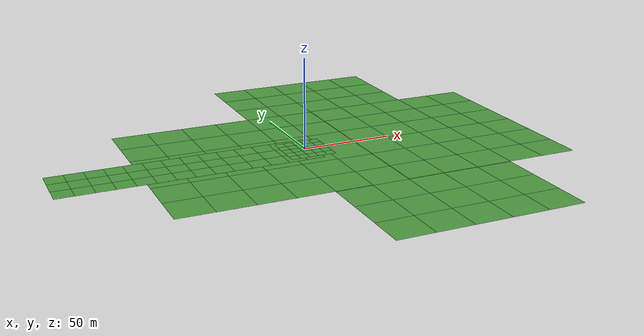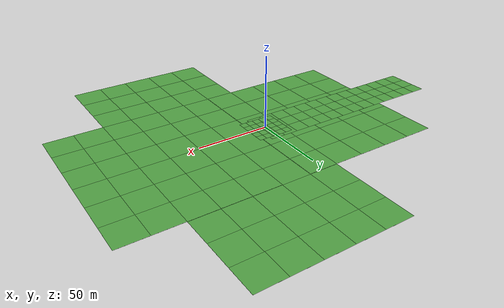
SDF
<?xml version="1.0" encoding="UTF-8" ?>
<sdf version="1.5">
  <world name="park">
    <gui fullscreen='0'>
      <camera name='user_camera'>
        <pose>-120.0 -90.0 90.0 0.0 0.6 0.6</pose>
        <view_controller>orbit</view_controller>
      </camera>
    </gui>
    <scene>
      <ambient>0.5 0.5 0.5 1</ambient>
      <background>0.5 0.5 0.5 1</background>
      <shadows>true</shadows>
      <sky>
        <clouds>
          <speed>2</speed>
          <mean_size>0.1</mean_size>
        </clouds>
        <time>12</time>
      </sky>
      <grid>false</grid>
    </scene>
    <physics type="ode">
      <gravity>0 0 -9.81</gravity>
      <ode>
        <solver>
          <type>quick</type>
          <iters>10</iters>
          <sor>1.3</sor>
        </solver>
        <constraints>
          <cfm>0.0</cfm>
          <erp>0.2</erp>
          <contact_max_correcting_vel>10</contact_max_correcting_vel>
          <contact_surface_layer>0.001</contact_surface_layer>
        </constraints>
      </ode>
      <max_step_size>0.001</max_step_size>
    </physics>
    <light type="directional" name="directional_light_1">
      <pose>0 20 20 0.1 0.1 0</pose>
      <diffuse>1 1 1 1</diffuse>
      <specular>1 1 1 1</specular>
      <attenuation>
        <range>300</range>
      </attenuation>
      <direction>0.1 0.1 -1</direction>
      <cast_shadows>false</cast_shadows>
    </light>

    <include>
      <uri>model://grass_plane</uri>
      <pose>-20 -10 -0.4 0 0 0</pose>
    </include>

    <include>
      <uri>model://grass_plane</uri>
      <pose>100 -10 -0.4 0 0 0</pose>
    </include>

    <include>
      <uri>model://grass_plane</uri>
      <pose>60 50 -0.6 0 0 0</pose>
    </include>

    <include>
      <uri>model://grass_plane</uri>
      <pose>60 -70 -0.6 0 0 0</pose>
    </include>

    <!-- The ground plane -->
    <model name="grass_plane">
      <static>true</static>
        <link name="link">
          <collision name="collision">
            <geometry>
              <plane>
                <normal>0 0 1</normal>
                <size>200 200</size>
              </plane>
            </geometry>
            <surface>
              <friction>
                <ode>
                  <mu>1</mu>
                  <mu2>1</mu2>
                </ode>
              </friction>
            </surface>
          </collision>

          <!-- Landing Area -->
          <visual name="v0">
            <pose>0 0 0.005 0 0 0</pose><geometry><plane><normal>0 0 1</normal><size>5 5</size></plane></geometry><cast_shadows>false</cast_shadows>
            <material><script><uri>model://grass_plane/materials/scripts/</uri><uri>model://grass_plane/materials/textures/</uri><name>grass_dry</name></script></material>
          </visual>
          <visual name="v1">
            <pose>-5 0 0.005 0 0 0</pose><geometry><plane><normal>0 0 1</normal><size>5 5</size></plane></geometry><cast_shadows>false</cast_shadows>
            <material><script><uri>model://grass_plane/materials/scripts/</uri><uri>model://grass_plane/materials/textures/</uri><name>grass_dry</name></script></material>
          </visual>
          <visual name="v2">
            <pose>5 0 0.005 0 0 0</pose><geometry><plane><normal>0 0 1</normal><size>5 5</size></plane></geometry><cast_shadows>false</cast_shadows>
            <material><script><uri>model://grass_plane/materials/scripts/</uri><uri>model://grass_plane/materials/textures/</uri><name>grass_dry</name></script></material>
          </visual>
          <visual name="v3">
            <pose>0 5 0.005 0 0 0</pose><geometry><plane><normal>0 0 1</normal><size>5 5</size></plane></geometry><cast_shadows>false</cast_shadows>
            <material><script><uri>model://grass_plane/materials/scripts/</uri><uri>model://grass_plane/materials/textures/</uri><name>grass_dry</name></script></material>
          </visual>
          <visual name="v4">
            <pose>-5 5 0.005 0 0 0</pose><geometry><plane><normal>0 0 1</normal><size>5 5</size></plane></geometry><cast_shadows>false</cast_shadows>
            <material><script><uri>model://grass_plane/materials/scripts/</uri><uri>model://grass_plane/materials/textures/</uri><name>grass_dry</name></script></material>
          </visual>
          <visual name="v5">
            <pose>5 5 0.005 0 0 0</pose><geometry><plane><normal>0 0 1</normal><size>5 5</size></plane></geometry><cast_shadows>false</cast_shadows>
            <material><script><uri>model://grass_plane/materials/scripts/</uri><uri>model://grass_plane/materials/textures/</uri><name>grass_dry</name></script></material>
          </visual>
          <visual name="v6">
            <pose>0 -5 0.005 0 0 0</pose><geometry><plane><normal>0 0 1</normal><size>5 5</size></plane></geometry><cast_shadows>false</cast_shadows>
            <material><script><uri>model://grass_plane/materials/scripts/</uri><uri>model://grass_plane/materials/textures/</uri><name>grass_dry</name></script></material>
          </visual>
          <visual name="v7">
            <pose>-5 -5 0.005 0 0 0</pose><geometry><plane><normal>0 0 1</normal><size>5 5</size></plane></geometry><cast_shadows>false</cast_shadows>
            <material><script><uri>model://grass_plane/materials/scripts/</uri><uri>model://grass_plane/materials/textures/</uri><name>grass_dry</name></script></material>
          </visual>
          <visual name="v8">
            <pose>10 0 0.005 0 0 0</pose><geometry><plane><normal>0 0 1</normal><size>5 5</size></plane></geometry><cast_shadows>false</cast_shadows>
            <material><script><uri>model://grass_plane/materials/scripts/</uri><uri>model://grass_plane/materials/textures/</uri><name>grass_dry</name></script></material>
          </visual>
          <visual name="v9">
            <pose>10 -5 0.005 0 0 0</pose><geometry><plane><normal>0 0 1</normal><size>5 5</size></plane></geometry><cast_shadows>false</cast_shadows>
            <material><script><uri>model://grass_plane/materials/scripts/</uri><uri>model://grass_plane/materials/textures/</uri><name>grass_dry</name></script></material>
          </visual>
          <visual name="v10">
            <pose>10 -10 0.005 0 0 0</pose><geometry><plane><normal>0 0 1</normal><size>5 5</size></plane></geometry><cast_shadows>false</cast_shadows>
            <material><script><uri>model://grass_plane/materials/scripts/</uri><uri>model://grass_plane/materials/textures/</uri><name>grass_dry</name></script></material>
          </visual>
          <visual name="v11">
            <pose>5 -10 0.005 0 0 0</pose><geometry><plane><normal>0 0 1</normal><size>5 5</size></plane></geometry><cast_shadows>false</cast_shadows>
            <material><script><uri>model://grass_plane/materials/scripts/</uri><uri>model://grass_plane/materials/textures/</uri><name>grass_dry</name></script></material>
          </visual>
          <visual name="v12">
            <pose>0 -10 0.005 0 0 0</pose><geometry><plane><normal>0 0 1</normal><size>5 5</size></plane></geometry><cast_shadows>false</cast_shadows>
            <material><script><uri>model://grass_plane/materials/scripts/</uri><uri>model://grass_plane/materials/textures/</uri><name>grass_dry</name></script></material>
          </visual>
          <visual name="v13">
            <pose>-5 -10 0.005 0 0 0</pose><geometry><plane><normal>0 0 1</normal><size>5 5</size></plane></geometry><cast_shadows>false</cast_shadows>
            <material><script><uri>model://grass_plane/materials/scripts/</uri><uri>model://grass_plane/materials/textures/</uri><name>grass_dry</name></script></material>
          </visual>
          <visual name="v14">
            <pose>-10 -10 0.005 0 0 0</pose><geometry><plane><normal>0 0 1</normal><size>5 5</size></plane></geometry><cast_shadows>false</cast_shadows>
            <material><script><uri>model://grass_plane/materials/scripts/</uri><uri>model://grass_plane/materials/textures/</uri><name>grass_dry</name></script></material>
          </visual>
          <visual name="v15">
            <pose>-10 -5 0.005 0 0 0</pose><geometry><plane><normal>0 0 1</normal><size>5 5</size></plane></geometry><cast_shadows>false</cast_shadows>
            <material><script><uri>model://grass_plane/materials/scripts/</uri><uri>model://grass_plane/materials/textures/</uri><name>grass_dry</name></script></material>
          </visual>
          <visual name="v16">
            <pose>-10 0 0.005 0 0 0</pose><geometry><plane><normal>0 0 1</normal><size>5 5</size></plane></geometry><cast_shadows>false</cast_shadows>
            <material><script><uri>model://grass_plane/materials/scripts/</uri><uri>model://grass_plane/materials/textures/</uri><name>grass_dry</name></script></material>
          </visual>
          <visual name="v17">
            <pose>-10 5 0.005 0 0 0</pose><geometry><plane><normal>0 0 1</normal><size>5 5</size></plane></geometry><cast_shadows>false</cast_shadows>
            <material><script><uri>model://grass_plane/materials/scripts/</uri><uri>model://grass_plane/materials/textures/</uri><name>grass_dry</name></script></material>
          </visual>
          <visual name="v18">
            <pose>-10 10 0.005 0 0 0</pose><geometry><plane><normal>0 0 1</normal><size>5 5</size></plane></geometry><cast_shadows>false</cast_shadows>
            <material><script><uri>model://grass_plane/materials/scripts/</uri><uri>model://grass_plane/materials/textures/</uri><name>grass_dry</name></script></material>
          </visual>
          <visual name="v19">
            <pose>-5 10 0.005 0 0 0</pose><geometry><plane><normal>0 0 1</normal><size>5 5</size></plane></geometry><cast_shadows>false</cast_shadows>
            <material><script><uri>model://grass_plane/materials/scripts/</uri><uri>model://grass_plane/materials/textures/</uri><name>grass_dry</name></script></material>
          </visual>
          <visual name="v20">
            <pose>0 10 0.005 0 0 0</pose><geometry><plane><normal>0 0 1</normal><size>5 5</size></plane></geometry><cast_shadows>false</cast_shadows>
            <material><script><uri>model://grass_plane/materials/scripts/</uri><uri>model://grass_plane/materials/textures/</uri><name>grass_dry</name></script></material>
          </visual>
          <visual name="v21">
            <pose>5 10 0.005 0 0 0</pose><geometry><plane><normal>0 0 1</normal><size>5 5</size></plane></geometry><cast_shadows>false</cast_shadows>
            <material><script><uri>model://grass_plane/materials/scripts/</uri><uri>model://grass_plane/materials/textures/</uri><name>grass_dry</name></script></material>
          </visual>
          <visual name="v22">
            <pose>10 10 0.005 0 0 0</pose><geometry><plane><normal>0 0 1</normal><size>5 5</size></plane></geometry><cast_shadows>false</cast_shadows>
            <material><script><uri>model://grass_plane/materials/scripts/</uri><uri>model://grass_plane/materials/textures/</uri><name>grass_dry</name></script></material>
          </visual>
          <visual name="v23">
            <pose>10 5 0.005 0 0 0</pose><geometry><plane><normal>0 0 1</normal><size>5 5</size></plane></geometry><cast_shadows>false</cast_shadows>
            <material><script><uri>model://grass_plane/materials/scripts/</uri><uri>model://grass_plane/materials/textures/</uri><name>grass_dry</name></script></material>
          </visual>
          <visual name="v24">
            <pose>5 -5 0.005 0 0 0</pose><geometry><plane><normal>0 0 1</normal><size>5 5</size></plane></geometry><cast_shadows>false</cast_shadows>
            <material><script><uri>model://grass_plane/materials/scripts/</uri><uri>model://grass_plane/materials/textures/</uri><name>grass_dry</name></script></material>
          </visual>

          <!-- around the landing area -->

          <!-- center of the strip -->
          <visual name="vv1">
            <pose>0 0 -0.20 0 0 0</pose><geometry><plane><normal>0 0 1</normal><size>10 10</size></plane></geometry><cast_shadows>false</cast_shadows>
            <material><script><uri>model://grass_plane/materials/scripts/</uri><uri>model://grass_plane/materials/textures/</uri><name>grass_dry</name></script></material>
          </visual>
          <visual name="vv2">
            <pose>-10 0 -0.20 0 0 0</pose><geometry><plane><normal>0 0 1</normal><size>10 10</size></plane></geometry><cast_shadows>false</cast_shadows>
            <material><script><uri>model://grass_plane/materials/scripts/</uri><uri>model://grass_plane/materials/textures/</uri><name>grass_dry</name></script></material>
          </visual>
          <visual name="vv3">
            <pose>-20 0 -0.20 0 0 0</pose><geometry><plane><normal>0 0 1</normal><size>10 10</size></plane></geometry><cast_shadows>false</cast_shadows>
            <material><script><uri>model://grass_plane/materials/scripts/</uri><uri>model://grass_plane/materials/textures/</uri><name>grass_dry</name></script></material>
          </visual>
          <visual name="vv4">
            <pose>-30 0 -0.20 0 0 0</pose><geometry><plane><normal>0 0 1</normal><size>10 10</size></plane></geometry><cast_shadows>false</cast_shadows>
            <material><script><uri>model://grass_plane/materials/scripts/</uri><uri>model://grass_plane/materials/textures/</uri><name>grass_dry</name></script></material>
          </visual>
          <visual name="vv5">
            <pose>-40 0 -0.20 0 0 0</pose><geometry><plane><normal>0 0 1</normal><size>10 10</size></plane></geometry><cast_shadows>false</cast_shadows>
            <material><script><uri>model://grass_plane/materials/scripts/</uri><uri>model://grass_plane/materials/textures/</uri><name>grass_dry</name></script></material>
          </visual>
          <visual name="vv6">
            <pose>-50 0 -0.20 0 0 0</pose><geometry><plane><normal>0 0 1</normal><size>10 10</size></plane></geometry><cast_shadows>false</cast_shadows>
            <material><script><uri>model://grass_plane/materials/scripts/</uri><uri>model://grass_plane/materials/textures/</uri><name>grass_dry</name></script></material>
          </visual>
          <visual name="vv7">
            <pose>-60 0 -0.20 0 0 0</pose><geometry><plane><normal>0 0 1</normal><size>10 10</size></plane></geometry><cast_shadows>false</cast_shadows>
            <material><script><uri>model://grass_plane/materials/scripts/</uri><uri>model://grass_plane/materials/textures/</uri><name>grass_dry</name></script></material>
          </visual>
          <visual name="vv8">
            <pose>-70 0 -0.20 0 0 0</pose><geometry><plane><normal>0 0 1</normal><size>10 10</size></plane></geometry><cast_shadows>false</cast_shadows>
            <material><script><uri>model://grass_plane/materials/scripts/</uri><uri>model://grass_plane/materials/textures/</uri><name>grass_dry</name></script></material>
          </visual>
          <visual name="vv9">
            <pose>-80 0 -0.20 0 0 0</pose><geometry><plane><normal>0 0 1</normal><size>10 10</size></plane></geometry><cast_shadows>false</cast_shadows>
            <material><script><uri>model://grass_plane/materials/scripts/</uri><uri>model://grass_plane/materials/textures/</uri><name>grass_dry</name></script></material>
          </visual>
          <visual name="vv10">
            <pose>-90 0 -0.20 0 0 0</pose><geometry><plane><normal>0 0 1</normal><size>10 10</size></plane></geometry><cast_shadows>false</cast_shadows>
            <material><script><uri>model://grass_plane/materials/scripts/</uri><uri>model://grass_plane/materials/textures/</uri><name>grass_dry</name></script></material>
          </visual>
          <visual name="vv11">
            <pose>-100 0 -0.20 0 0 0</pose><geometry><plane><normal>0 0 1</normal><size>10 10</size></plane></geometry><cast_shadows>false</cast_shadows>
            <material><script><uri>model://grass_plane/materials/scripts/</uri><uri>model://grass_plane/materials/textures/</uri><name>grass_dry</name></script></material>
          </visual>
          <visual name="vv12">
            <pose>-110 0 -0.20 0 0 0</pose><geometry><plane><normal>0 0 1</normal><size>10 10</size></plane></geometry><cast_shadows>false</cast_shadows>
            <material><script><uri>model://grass_plane/materials/scripts/</uri><uri>model://grass_plane/materials/textures/</uri><name>grass_dry</name></script></material>
          </visual>
          <visual name="vv13">
            <pose>-120 0 -0.20 0 0 0</pose><geometry><plane><normal>0 0 1</normal><size>10 10</size></plane></geometry><cast_shadows>false</cast_shadows>
            <material><script><uri>model://grass_plane/materials/scripts/</uri><uri>model://grass_plane/materials/textures/</uri><name>grass_dry</name></script></material>
          </visual>
          <visual name="vv14">
            <pose>-130 0 -0.20 0 0 0</pose><geometry><plane><normal>0 0 1</normal><size>10 10</size></plane></geometry><cast_shadows>false</cast_shadows>
            <material><script><uri>model://grass_plane/materials/scripts/</uri><uri>model://grass_plane/materials/textures/</uri><name>grass_dry</name></script></material>
          </visual>

          <!-- center+y of the strip -->
          <visual name="vv1_1">
            <pose>0 10 -0.20 0 0 0</pose><geometry><plane><normal>0 0 1</normal><size>10 10</size></plane></geometry><cast_shadows>false</cast_shadows>
            <material><script><uri>model://grass_plane/materials/scripts/</uri><uri>model://grass_plane/materials/textures/</uri><name>grass_dry</name></script></material>
          </visual>
          <visual name="vv1_2">
            <pose>-10 10 -0.20 0 0 0</pose><geometry><plane><normal>0 0 1</normal><size>10 10</size></plane></geometry><cast_shadows>false</cast_shadows>
            <material><script><uri>model://grass_plane/materials/scripts/</uri><uri>model://grass_plane/materials/textures/</uri><name>grass_dry</name></script></material>
          </visual>
          <visual name="vv1_3">
            <pose>-20 10 -0.20 0 0 0</pose><geometry><plane><normal>0 0 1</normal><size>10 10</size></plane></geometry><cast_shadows>false</cast_shadows>
            <material><script><uri>model://grass_plane/materials/scripts/</uri><uri>model://grass_plane/materials/textures/</uri><name>grass_dry</name></script></material>
          </visual>
          <visual name="vv1_4">
            <pose>-30 10 -0.20 0 0 0</pose><geometry><plane><normal>0 0 1</normal><size>10 10</size></plane></geometry><cast_shadows>false</cast_shadows>
            <material><script><uri>model://grass_plane/materials/scripts/</uri><uri>model://grass_plane/materials/textures/</uri><name>grass_dry</name></script></material>
          </visual>
          <visual name="vv1_5">
            <pose>-40 10 -0.20 0 0 0</pose><geometry><plane><normal>0 0 1</normal><size>10 10</size></plane></geometry><cast_shadows>false</cast_shadows>
            <material><script><uri>model://grass_plane/materials/scripts/</uri><uri>model://grass_plane/materials/textures/</uri><name>grass_dry</name></script></material>
          </visual>
          <visual name="vv1_6">
            <pose>-50 10 -0.20 0 0 0</pose><geometry><plane><normal>0 0 1</normal><size>10 10</size></plane></geometry><cast_shadows>false</cast_shadows>
            <material><script><uri>model://grass_plane/materials/scripts/</uri><uri>model://grass_plane/materials/textures/</uri><name>grass_dry</name></script></material>
          </visual>
          <visual name="vv1_7">
            <pose>-60 10 -0.20 0 0 0</pose><geometry><plane><normal>0 0 1</normal><size>10 10</size></plane></geometry><cast_shadows>false</cast_shadows>
            <material><script><uri>model://grass_plane/materials/scripts/</uri><uri>model://grass_plane/materials/textures/</uri><name>grass_dry</name></script></material>
          </visual>
          <visual name="vv1_8">
            <pose>-70 10 -0.20 0 0 0</pose><geometry><plane><normal>0 0 1</normal><size>10 10</size></plane></geometry><cast_shadows>false</cast_shadows>
            <material><script><uri>model://grass_plane/materials/scripts/</uri><uri>model://grass_plane/materials/textures/</uri><name>grass_dry</name></script></material>
          </visual>
          <visual name="vv1_9">
            <pose>-80 10 -0.20 0 0 0</pose><geometry><plane><normal>0 0 1</normal><size>10 10</size></plane></geometry><cast_shadows>false</cast_shadows>
            <material><script><uri>model://grass_plane/materials/scripts/</uri><uri>model://grass_plane/materials/textures/</uri><name>grass_dry</name></script></material>
          </visual>
          <visual name="vv1_10">
            <pose>-90 10 -0.20 0 0 0</pose><geometry><plane><normal>0 0 1</normal><size>10 10</size></plane></geometry><cast_shadows>false</cast_shadows>
            <material><script><uri>model://grass_plane/materials/scripts/</uri><uri>model://grass_plane/materials/textures/</uri><name>grass_dry</name></script></material>
          </visual>
          <visual name="vv1_11">
            <pose>-100 10 -0.20 0 0 0</pose><geometry><plane><normal>0 0 1</normal><size>10 10</size></plane></geometry><cast_shadows>false</cast_shadows>
            <material><script><uri>model://grass_plane/materials/scripts/</uri><uri>model://grass_plane/materials/textures/</uri><name>grass_dry</name></script></material>
          </visual>
          <visual name="vv1_12">
            <pose>-110 10 -0.20 0 0 0</pose><geometry><plane><normal>0 0 1</normal><size>10 10</size></plane></geometry><cast_shadows>false</cast_shadows>
            <material><script><uri>model://grass_plane/materials/scripts/</uri><uri>model://grass_plane/materials/textures/</uri><name>grass_dry</name></script></material>
          </visual>
          <visual name="vv1_13">
            <pose>-120 10 -0.20 0 0 0</pose><geometry><plane><normal>0 0 1</normal><size>10 10</size></plane></geometry><cast_shadows>false</cast_shadows>
            <material><script><uri>model://grass_plane/materials/scripts/</uri><uri>model://grass_plane/materials/textures/</uri><name>grass_dry</name></script></material>
          </visual>
          <visual name="vv1_14">
            <pose>-130 10 -0.20 0 0 0</pose><geometry><plane><normal>0 0 1</normal><size>10 10</size></plane></geometry><cast_shadows>false</cast_shadows>
            <material><script><uri>model://grass_plane/materials/scripts/</uri><uri>model://grass_plane/materials/textures/</uri><name>grass_dry</name></script></material>
          </visual>

          <!-- center-y of the strip -->
          <visual name="vv2_1">
            <pose>0 -10 -0.20 0 0 0</pose><geometry><plane><normal>0 0 1</normal><size>10 10</size></plane></geometry><cast_shadows>false</cast_shadows>
            <material><script><uri>model://grass_plane/materials/scripts/</uri><uri>model://grass_plane/materials/textures/</uri><name>grass_dry</name></script></material>
          </visual>
          <visual name="vv2_2">
            <pose>-10 -10 -0.20 0 0 0</pose><geometry><plane><normal>0 0 1</normal><size>10 10</size></plane></geometry><cast_shadows>false</cast_shadows>
            <material><script><uri>model://grass_plane/materials/scripts/</uri><uri>model://grass_plane/materials/textures/</uri><name>grass_dry</name></script></material>
          </visual>
          <visual name="vv2_3">
            <pose>-20 -10 -0.20 0 0 0</pose><geometry><plane><normal>0 0 1</normal><size>10 10</size></plane></geometry><cast_shadows>false</cast_shadows>
            <material><script><uri>model://grass_plane/materials/scripts/</uri><uri>model://grass_plane/materials/textures/</uri><name>grass_dry</name></script></material>
          </visual>
          <visual name="vv2_4">
            <pose>-30 -10 -0.20 0 0 0</pose><geometry><plane><normal>0 0 1</normal><size>10 10</size></plane></geometry><cast_shadows>false</cast_shadows>
            <material><script><uri>model://grass_plane/materials/scripts/</uri><uri>model://grass_plane/materials/textures/</uri><name>grass_dry</name></script></material>
          </visual>
          <visual name="vv2_5">
            <pose>-40 -10 -0.20 0 0 0</pose><geometry><plane><normal>0 0 1</normal><size>10 10</size></plane></geometry><cast_shadows>false</cast_shadows>
            <material><script><uri>model://grass_plane/materials/scripts/</uri><uri>model://grass_plane/materials/textures/</uri><name>grass_dry</name></script></material>
          </visual>
          <visual name="vv2_6">
            <pose>-50 -10 -0.20 0 0 0</pose><geometry><plane><normal>0 0 1</normal><size>10 10</size></plane></geometry><cast_shadows>false</cast_shadows>
            <material><script><uri>model://grass_plane/materials/scripts/</uri><uri>model://grass_plane/materials/textures/</uri><name>grass_dry</name></script></material>
          </visual>
          <visual name="vv2_7">
            <pose>-60 -10 -0.20 0 0 0</pose><geometry><plane><normal>0 0 1</normal><size>10 10</size></plane></geometry><cast_shadows>false</cast_shadows>
            <material><script><uri>model://grass_plane/materials/scripts/</uri><uri>model://grass_plane/materials/textures/</uri><name>grass_dry</name></script></material>
          </visual>
          <visual name="vv2_8">
            <pose>-70 -10 -0.20 0 0 0</pose><geometry><plane><normal>0 0 1</normal><size>10 10</size></plane></geometry><cast_shadows>false</cast_shadows>
            <material><script><uri>model://grass_plane/materials/scripts/</uri><uri>model://grass_plane/materials/textures/</uri><name>grass_dry</name></script></material>
          </visual>
          <visual name="vv2_9">
            <pose>-80 -10 -0.20 0 0 0</pose><geometry><plane><normal>0 0 1</normal><size>10 10</size></plane></geometry><cast_shadows>false</cast_shadows>
            <material><script><uri>model://grass_plane/materials/scripts/</uri><uri>model://grass_plane/materials/textures/</uri><name>grass_dry</name></script></material>
          </visual>
          <visual name="vv2_10">
            <pose>-90 -10 -0.20 0 0 0</pose><geometry><plane><normal>0 0 1</normal><size>10 10</size></plane></geometry><cast_shadows>false</cast_shadows>
            <material><script><uri>model://grass_plane/materials/scripts/</uri><uri>model://grass_plane/materials/textures/</uri><name>grass_dry</name></script></material>
          </visual>
          <visual name="vv2_11">
            <pose>-100 -10 -0.20 0 0 0</pose><geometry><plane><normal>0 0 1</normal><size>10 10</size></plane></geometry><cast_shadows>false</cast_shadows>
            <material><script><uri>model://grass_plane/materials/scripts/</uri><uri>model://grass_plane/materials/textures/</uri><name>grass_dry</name></script></material>
          </visual>
          <visual name="vv2_12">
            <pose>-110 -10 -0.20 0 0 0</pose><geometry><plane><normal>0 0 1</normal><size>10 10</size></plane></geometry><cast_shadows>false</cast_shadows>
            <material><script><uri>model://grass_plane/materials/scripts/</uri><uri>model://grass_plane/materials/textures/</uri><name>grass_dry</name></script></material>
          </visual>
          <visual name="vv2_13">
            <pose>-120 -10 -0.20 0 0 0</pose><geometry><plane><normal>0 0 1</normal><size>10 10</size></plane></geometry><cast_shadows>false</cast_shadows>
            <material><script><uri>model://grass_plane/materials/scripts/</uri><uri>model://grass_plane/materials/textures/</uri><name>grass_dry</name></script></material>
          </visual>
          <visual name="vv2_14">
            <pose>-130 -10 -0.20 0 0 0</pose><geometry><plane><normal>0 0 1</normal><size>10 10</size></plane></geometry><cast_shadows>false</cast_shadows>
            <material><script><uri>model://grass_plane/materials/scripts/</uri><uri>model://grass_plane/materials/textures/</uri><name>grass_dry</name></script></material>
          </visual>

        </link>
      </model>

  </world>
</sdf>

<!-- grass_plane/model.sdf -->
<sdf version="1.5">
<model name="grass_plane">
  <static>true</static>
    <link name="link">
      <collision name="collision">
        <geometry>
          <plane>
            <normal>0 0 1</normal>
            <size>200 200</size>
          </plane>
        </geometry>
        <surface>
          <friction>
            <ode>
              <mu>100</mu>
              <mu2>50</mu2>
            </ode>
          </friction>
        </surface>
      </collision>

      <visual name="visual_(-3, -2)">
        <pose>-60 -40 0 0 0 0</pose>
        <cast_shadows>false</cast_shadows>
        <geometry>
          <plane>
            <normal>0 0 1</normal>
            <size>20 20</size>
          </plane>
        </geometry>
        <material>
          <script>
            <uri>model://grass_plane/materials/scripts/</uri>
            <uri>model://grass_plane/materials/textures/</uri>
            <name>grass_dry</name>
          </script>
        </material>
      </visual>

      <visual name="visual_(-3, -1)">
        <pose>-60 -20 0 0 0 0</pose>
        <cast_shadows>false</cast_shadows>
        <geometry>
          <plane>
            <normal>0 0 1</normal>
            <size>20 20</size>
          </plane>
        </geometry>
        <material>
          <script>
            <uri>model://grass_plane/materials/scripts/</uri>
            <uri>model://grass_plane/materials/textures/</uri>
            <name>grass_dry</name>
          </script>
        </material>
      </visual>

      <visual name="visual_(-3, 0)">
        <pose>-60 0 0 0 0 0</pose>
        <cast_shadows>false</cast_shadows>
        <geometry>
          <plane>
            <normal>0 0 1</normal>
            <size>20 20</size>
          </plane>
        </geometry>
        <material>
          <script>
            <uri>model://grass_plane/materials/scripts/</uri>
            <uri>model://grass_plane/materials/textures/</uri>
            <name>grass_dry</name>
          </script>
        </material>
      </visual>

      <visual name="visual_(-3, 1)">
        <pose>-60 20 0 0 0 0</pose>
        <cast_shadows>false</cast_shadows>
        <geometry>
          <plane>
            <normal>0 0 1</normal>
            <size>20 20</size>
          </plane>
        </geometry>
        <material>
          <script>
            <uri>model://grass_plane/materials/scripts/</uri>
            <uri>model://grass_plane/materials/textures/</uri>
            <name>grass_dry</name>
          </script>
        </material>
      </visual>

      <visual name="visual_(-3, 2)">
        <pose>-60 40 0 0 0 0</pose>
        <cast_shadows>false</cast_shadows>
        <geometry>
          <plane>
            <normal>0 0 1</normal>
            <size>20 20</size>
          </plane>
        </geometry>
        <material>
          <script>
            <uri>model://grass_plane/materials/scripts/</uri>
            <uri>model://grass_plane/materials/textures/</uri>
            <name>grass_dry</name>
          </script>
        </material>
      </visual>

      <visual name="visual_(-3, 3)">
        <pose>-60 60 0 0 0 0</pose>
        <cast_shadows>false</cast_shadows>
        <geometry>
          <plane>
            <normal>0 0 1</normal>
            <size>20 20</size>
          </plane>
        </geometry>
        <material>
          <script>
            <uri>model://grass_plane/materials/scripts/</uri>
            <uri>model://grass_plane/materials/textures/</uri>
            <name>grass_dry</name>
          </script>
        </material>
      </visual>

      <visual name="visual_(-2, -2)">
        <pose>-40 -40 0 0 0 0</pose>
        <cast_shadows>false</cast_shadows>
        <geometry>
          <plane>
            <normal>0 0 1</normal>
            <size>20 20</size>
          </plane>
        </geometry>
        <material>
          <script>
            <uri>model://grass_plane/materials/scripts/</uri>
            <uri>model://grass_plane/materials/textures/</uri>
            <name>grass_dry</name>
          </script>
        </material>
      </visual>

      <visual name="visual_(-2, -1)">
        <pose>-40 -20 0 0 0 0</pose>
        <cast_shadows>false</cast_shadows>
        <geometry>
          <plane>
            <normal>0 0 1</normal>
            <size>20 20</size>
          </plane>
        </geometry>
        <material>
          <script>
            <uri>model://grass_plane/materials/scripts/</uri>
            <uri>model://grass_plane/materials/textures/</uri>
            <name>grass_dry</name>
          </script>
        </material>
      </visual>

      <visual name="visual_(-2, 0)">
        <pose>-40 0 0 0 0 0</pose>
        <cast_shadows>false</cast_shadows>
        <geometry>
          <plane>
            <normal>0 0 1</normal>
            <size>20 20</size>
          </plane>
        </geometry>
        <material>
          <script>
            <uri>model://grass_plane/materials/scripts/</uri>
            <uri>model://grass_plane/materials/textures/</uri>
            <name>grass_dry</name>
          </script>
        </material>
      </visual>

      <visual name="visual_(-2, 1)">
        <pose>-40 20 0 0 0 0</pose>
        <cast_shadows>false</cast_shadows>
        <geometry>
          <plane>
            <normal>0 0 1</normal>
            <size>20 20</size>
          </plane>
        </geometry>
        <material>
          <script>
            <uri>model://grass_plane/materials/scripts/</uri>
            <uri>model://grass_plane/materials/textures/</uri>
            <name>grass_dry</name>
          </script>
        </material>
      </visual>

      <visual name="visual_(-2, 2)">
        <pose>-40 40 0 0 0 0</pose>
        <cast_shadows>false</cast_shadows>
        <geometry>
          <plane>
            <normal>0 0 1</normal>
            <size>20 20</size>
          </plane>
        </geometry>
        <material>
          <script>
            <uri>model://grass_plane/materials/scripts/</uri>
            <uri>model://grass_plane/materials/textures/</uri>
            <name>grass_dry</name>
          </script>
        </material>
      </visual>

      <visual name="visual_(-2, 3)">
        <pose>-40 60 0 0 0 0</pose>
        <cast_shadows>false</cast_shadows>
        <geometry>
          <plane>
            <normal>0 0 1</normal>
            <size>20 20</size>
          </plane>
        </geometry>
        <material>
          <script>
            <uri>model://grass_plane/materials/scripts/</uri>
            <uri>model://grass_plane/materials/textures/</uri>
            <name>grass_dry</name>
          </script>
        </material>
      </visual>

      <visual name="visual_(-1, -2)">
        <pose>-20 -40 0 0 0 0</pose>
        <cast_shadows>false</cast_shadows>
        <geometry>
          <plane>
            <normal>0 0 1</normal>
            <size>20 20</size>
          </plane>
        </geometry>
        <material>
          <script>
            <uri>model://grass_plane/materials/scripts/</uri>
            <uri>model://grass_plane/materials/textures/</uri>
            <name>grass_dry</name>
          </script>
        </material>
      </visual>

      <visual name="visual_(-1, -1)">
        <pose>-20 -20 0 0 0 0</pose>
        <cast_shadows>false</cast_shadows>
        <geometry>
          <plane>
            <normal>0 0 1</normal>
            <size>20 20</size>
          </plane>
        </geometry>
        <material>
          <script>
            <uri>model://grass_plane/materials/scripts/</uri>
            <uri>model://grass_plane/materials/textures/</uri>
            <name>grass_dry</name>
          </script>
        </material>
      </visual>

      <visual name="visual_(-1, 0)">
        <pose>-20 0 0 0 0 0</pose>
        <cast_shadows>false</cast_shadows>
        <geometry>
          <plane>
            <normal>0 0 1</normal>
            <size>20 20</size>
          </plane>
        </geometry>
        <material>
          <script>
            <uri>model://grass_plane/materials/scripts/</uri>
            <uri>model://grass_plane/materials/textures/</uri>
            <name>grass_dry</name>
          </script>
        </material>
      </visual>

      <visual name="visual_(-1, 1)">
        <pose>-20 20 0 0 0 0</pose>
        <cast_shadows>false</cast_shadows>
        <geometry>
          <plane>
            <normal>0 0 1</normal>
            <size>20 20</size>
          </plane>
        </geometry>
        <material>
          <script>
            <uri>model://grass_plane/materials/scripts/</uri>
            <uri>model://grass_plane/materials/textures/</uri>
            <name>grass_dry</name>
          </script>
        </material>
      </visual>

      <visual name="visual_(-1, 2)">
        <pose>-20 40 0 0 0 0</pose>
        <cast_shadows>false</cast_shadows>
        <geometry>
          <plane>
            <normal>0 0 1</normal>
            <size>20 20</size>
          </plane>
        </geometry>
        <material>
          <script>
            <uri>model://grass_plane/materials/scripts/</uri>
            <uri>model://grass_plane/materials/textures/</uri>
            <name>grass_dry</name>
          </script>
        </material>
      </visual>

      <visual name="visual_(-1, 3)">
        <pose>-20 60 0 0 0 0</pose>
        <cast_shadows>false</cast_shadows>
        <geometry>
          <plane>
            <normal>0 0 1</normal>
            <size>20 20</size>
          </plane>
        </geometry>
        <material>
          <script>
            <uri>model://grass_plane/materials/scripts/</uri>
            <uri>model://grass_plane/materials/textures/</uri>
            <name>grass_dry</name>
          </script>
        </material>
      </visual>

      <visual name="visual_(0, -2)">
        <pose>0 -40 0 0 0 0</pose>
        <cast_shadows>false</cast_shadows>
        <geometry>
          <plane>
            <normal>0 0 1</normal>
            <size>20 20</size>
          </plane>
        </geometry>
        <material>
          <script>
            <uri>model://grass_plane/materials/scripts/</uri>
            <uri>model://grass_plane/materials/textures/</uri>
            <name>grass_dry</name>
          </script>
        </material>
      </visual>

      <visual name="visual_(0, -1)">
        <pose>0 -20 0 0 0 0</pose>
        <cast_shadows>false</cast_shadows>
        <geometry>
          <plane>
            <normal>0 0 1</normal>
            <size>20 20</size>
          </plane>
        </geometry>
        <material>
          <script>
            <uri>model://grass_plane/materials/scripts/</uri>
            <uri>model://grass_plane/materials/textures/</uri>
            <name>grass_dry</name>
          </script>
        </material>
      </visual>

      <visual name="visual_(0, 0)">
        <pose>0 0 0 0 0 0</pose>
        <cast_shadows>false</cast_shadows>
        <geometry>
          <plane>
            <normal>0 0 1</normal>
            <size>20 20</size>
          </plane>
        </geometry>
        <material>
          <script>
            <uri>model://grass_plane/materials/scripts/</uri>
            <uri>model://grass_plane/materials/textures/</uri>
            <name>grass_dry</name>
          </script>
        </material>
      </visual>

      <visual name="visual_(0, 1)">
        <pose>0 20 0 0 0 0</pose>
        <cast_shadows>false</cast_shadows>
        <geometry>
          <plane>
            <normal>0 0 1</normal>
            <size>20 20</size>
          </plane>
        </geometry>
        <material>
          <script>
            <uri>model://grass_plane/materials/scripts/</uri>
            <uri>model://grass_plane/materials/textures/</uri>
            <name>grass_dry</name>
          </script>
        </material>
      </visual>

      <visual name="visual_(0, 2)">
        <pose>0 40 0 0 0 0</pose>
        <cast_shadows>false</cast_shadows>
        <geometry>
          <plane>
            <normal>0 0 1</normal>
            <size>20 20</size>
          </plane>
        </geometry>
        <material>
          <script>
            <uri>model://grass_plane/materials/scripts/</uri>
            <uri>model://grass_plane/materials/textures/</uri>
            <name>grass_dry</name>
          </script>
        </material>
      </visual>

      <visual name="visual_(0, 3)">
        <pose>0 60 0 0 0 0</pose>
        <cast_shadows>false</cast_shadows>
        <geometry>
          <plane>
            <normal>0 0 1</normal>
            <size>20 20</size>
          </plane>
        </geometry>
        <material>
          <script>
            <uri>model://grass_plane/materials/scripts/</uri>
            <uri>model://grass_plane/materials/textures/</uri>
            <name>grass_dry</name>
          </script>
        </material>
      </visual>

      <visual name="visual_(1, -2)">
        <pose>20 -40 0 0 0 0</pose>
        <cast_shadows>false</cast_shadows>
        <geometry>
          <plane>
            <normal>0 0 1</normal>
            <size>20 20</size>
          </plane>
        </geometry>
        <material>
          <script>
            <uri>model://grass_plane/materials/scripts/</uri>
            <uri>model://grass_plane/materials/textures/</uri>
            <name>grass_dry</name>
          </script>
        </material>
      </visual>

      <visual name="visual_(1, -1)">
        <pose>20 -20 0 0 0 0</pose>
        <cast_shadows>false</cast_shadows>
        <geometry>
          <plane>
            <normal>0 0 1</normal>
            <size>20 20</size>
          </plane>
        </geometry>
        <material>
          <script>
            <uri>model://grass_plane/materials/scripts/</uri>
            <uri>model://grass_plane/materials/textures/</uri>
            <name>grass_dry</name>
          </script>
        </material>
      </visual>

      <visual name="visual_(1, 0)">
        <pose>20 0 0 0 0 0</pose>
        <cast_shadows>false</cast_shadows>
        <geometry>
          <plane>
            <normal>0 0 1</normal>
            <size>20 20</size>
          </plane>
        </geometry>
        <material>
          <script>
            <uri>model://grass_plane/materials/scripts/</uri>
            <uri>model://grass_plane/materials/textures/</uri>
            <name>grass_dry</name>
          </script>
        </material>
      </visual>

      <visual name="visual_(1, 1)">
        <pose>20 20 0 0 0 0</pose>
        <cast_shadows>false</cast_shadows>
        <geometry>
          <plane>
            <normal>0 0 1</normal>
            <size>20 20</size>
          </plane>
        </geometry>
        <material>
          <script>
            <uri>model://grass_plane/materials/scripts/</uri>
            <uri>model://grass_plane/materials/textures/</uri>
            <name>grass_dry</name>
          </script>
        </material>
      </visual>

      <visual name="visual_(1, 2)">
        <pose>20 40 0 0 0 0</pose>
        <cast_shadows>false</cast_shadows>
        <geometry>
          <plane>
            <normal>0 0 1</normal>
            <size>20 20</size>
          </plane>
        </geometry>
        <material>
          <script>
            <uri>model://grass_plane/materials/scripts/</uri>
            <uri>model://grass_plane/materials/textures/</uri>
            <name>grass_dry</name>
          </script>
        </material>
      </visual>

      <visual name="visual_(1, 3)">
        <pose>20 60 0 0 0 0</pose>
        <cast_shadows>false</cast_shadows>
        <geometry>
          <plane>
            <normal>0 0 1</normal>
            <size>20 20</size>
          </plane>
        </geometry>
        <material>
          <script>
            <uri>model://grass_plane/materials/scripts/</uri>
            <uri>model://grass_plane/materials/textures/</uri>
            <name>grass_dry</name>
          </script>
        </material>
      </visual>

    </link>
  </model>
</sdf>
